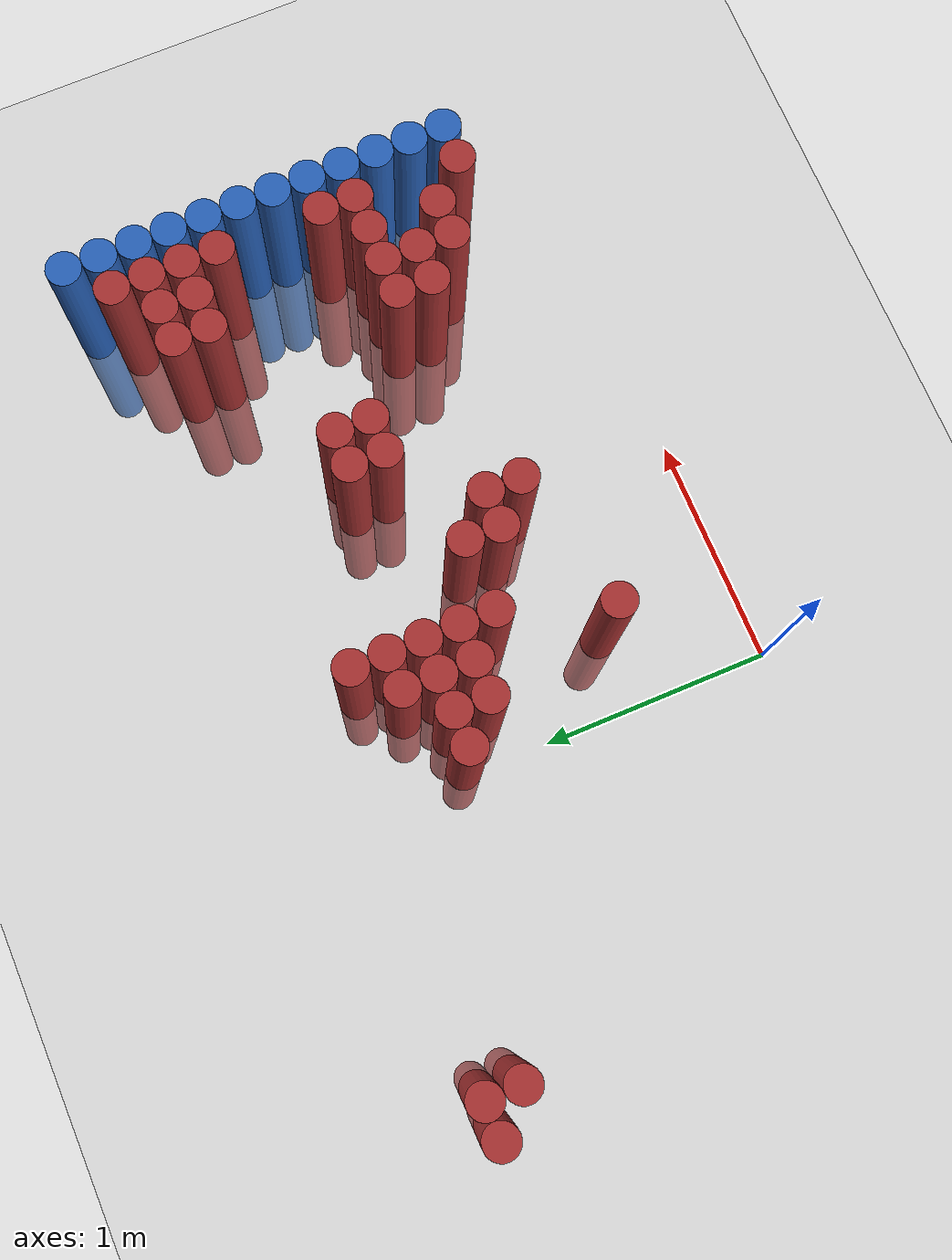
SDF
<sdf version="1.6">
 <world name="default">
  <model name="ground_plane">
   <static>1</static>
   <link name="link">
    <collision name="collision">
     <geometry><plane><normal>0 0 1</normal><size>100 100</size></plane></geometry>
     <surface><friction><ode><mu>100</mu><mu2>50</mu2></ode></friction></surface>
    </collision>
    <visual name="visual">
     <cast_shadows>0</cast_shadows>
     <geometry><plane><normal>0 0 1</normal><size>100 100</size></plane></geometry>
     <material>
      <script><uri>file://media/materials/scripts/gazebo.material</uri><name>Gazebo/Grey</name></script>
     </material>
    </visual>
   </link>
  </model>
  <model name="unit_cylinder_152">
   <static>1</static>
   <pose>-1.325000 1.825000 0.000000 0.000000 0.000000 0.000000</pose>
   <link name="link">
    <inertial>
     <mass>1</mass>
     <inertia><ixx>0.145833</ixx><ixy>0</ixy><ixz>0</ixz><iyy>0.145833</iyy><iyz>0</iyz><izz>0.125</izz></inertia>
    </inertial>
    <collision name="collision">
     <geometry><cylinder><radius>0.075000</radius><length>1.5</length></cylinder></geometry>
    </collision>
    <visual name="visual">
     <geometry><cylinder><radius>0.075000</radius><length>1.5</length></cylinder></geometry>
     <material>
      <ambient>0.648000 0.192000 0.192000 1</ambient>
      <diffuse>0.648000 0.192000 0.192000 1</diffuse>
     </material>
     <material>
      <script><name>Gazebo/Grey</name><uri>file://media/materials/scripts/gazebo.material</uri></script>
     </material>
    </visual>
   </link>
  </model>
  <model name="unit_cylinder_154">
   <static>1</static>
   <pose>-1.175000 1.675000 0.000000 0.000000 0.000000 0.000000</pose>
   <link name="link">
    <inertial>
     <mass>1</mass>
     <inertia><ixx>0.145833</ixx><ixy>0</ixy><ixz>0</ixz><iyy>0.145833</iyy><iyz>0</iyz><izz>0.125</izz></inertia>
    </inertial>
    <collision name="collision">
     <geometry><cylinder><radius>0.075000</radius><length>1.5</length></cylinder></geometry>
    </collision>
    <visual name="visual">
     <geometry><cylinder><radius>0.075000</radius><length>1.5</length></cylinder></geometry>
     <material>
      <ambient>0.648000 0.192000 0.192000 1</ambient>
      <diffuse>0.648000 0.192000 0.192000 1</diffuse>
     </material>
     <material>
      <script><name>Gazebo/Grey</name><uri>file://media/materials/scripts/gazebo.material</uri></script>
     </material>
    </visual>
   </link>
  </model>
  <model name="unit_cylinder_155">
   <static>1</static>
   <pose>-1.175000 1.825000 0.000000 0.000000 0.000000 0.000000</pose>
   <link name="link">
    <inertial>
     <mass>1</mass>
     <inertia><ixx>0.145833</ixx><ixy>0</ixy><ixz>0</ixz><iyy>0.145833</iyy><iyz>0</iyz><izz>0.125</izz></inertia>
    </inertial>
    <collision name="collision">
     <geometry><cylinder><radius>0.075000</radius><length>1.5</length></cylinder></geometry>
    </collision>
    <visual name="visual">
     <geometry><cylinder><radius>0.075000</radius><length>1.5</length></cylinder></geometry>
     <material>
      <ambient>0.648000 0.192000 0.192000 1</ambient>
      <diffuse>0.648000 0.192000 0.192000 1</diffuse>
     </material>
     <material>
      <script><name>Gazebo/Grey</name><uri>file://media/materials/scripts/gazebo.material</uri></script>
     </material>
    </visual>
   </link>
  </model>
  <model name="unit_cylinder_156">
   <static>1</static>
   <pose>0.025000 1.375000 0.000000 0.000000 0.000000 0.000000</pose>
   <link name="link">
    <inertial>
     <mass>1</mass>
     <inertia><ixx>0.145833</ixx><ixy>0</ixy><ixz>0</ixz><iyy>0.145833</iyy><iyz>0</iyz><izz>0.125</izz></inertia>
    </inertial>
    <collision name="collision">
     <geometry><cylinder><radius>0.075000</radius><length>1.5</length></cylinder></geometry>
    </collision>
    <visual name="visual">
     <geometry><cylinder><radius>0.075000</radius><length>1.5</length></cylinder></geometry>
     <material>
      <ambient>0.648000 0.192000 0.192000 1</ambient>
      <diffuse>0.648000 0.192000 0.192000 1</diffuse>
     </material>
     <material>
      <script><name>Gazebo/Grey</name><uri>file://media/materials/scripts/gazebo.material</uri></script>
     </material>
    </visual>
   </link>
  </model>
  <model name="unit_cylinder_159">
   <static>1</static>
   <pose>0.175000 1.225000 0.000000 0.000000 0.000000 0.000000</pose>
   <link name="link">
    <inertial>
     <mass>1</mass>
     <inertia><ixx>0.145833</ixx><ixy>0</ixy><ixz>0</ixz><iyy>0.145833</iyy><iyz>0</iyz><izz>0.125</izz></inertia>
    </inertial>
    <collision name="collision">
     <geometry><cylinder><radius>0.075000</radius><length>1.5</length></cylinder></geometry>
    </collision>
    <visual name="visual">
     <geometry><cylinder><radius>0.075000</radius><length>1.5</length></cylinder></geometry>
     <material>
      <ambient>0.648000 0.192000 0.192000 1</ambient>
      <diffuse>0.648000 0.192000 0.192000 1</diffuse>
     </material>
     <material>
      <script><name>Gazebo/Grey</name><uri>file://media/materials/scripts/gazebo.material</uri></script>
     </material>
    </visual>
   </link>
  </model>
  <model name="unit_cylinder_160">
   <static>1</static>
   <pose>0.175000 1.375000 0.000000 0.000000 0.000000 0.000000</pose>
   <link name="link">
    <inertial>
     <mass>1</mass>
     <inertia><ixx>0.145833</ixx><ixy>0</ixy><ixz>0</ixz><iyy>0.145833</iyy><iyz>0</iyz><izz>0.125</izz></inertia>
    </inertial>
    <collision name="collision">
     <geometry><cylinder><radius>0.075000</radius><length>1.5</length></cylinder></geometry>
    </collision>
    <visual name="visual">
     <geometry><cylinder><radius>0.075000</radius><length>1.5</length></cylinder></geometry>
     <material>
      <ambient>0.648000 0.192000 0.192000 1</ambient>
      <diffuse>0.648000 0.192000 0.192000 1</diffuse>
     </material>
     <material>
      <script><name>Gazebo/Grey</name><uri>file://media/materials/scripts/gazebo.material</uri></script>
     </material>
    </visual>
   </link>
  </model>
  <model name="unit_cylinder_163">
   <static>1</static>
   <pose>0.325000 0.625000 0.000000 0.000000 0.000000 0.000000</pose>
   <link name="link">
    <inertial>
     <mass>1</mass>
     <inertia><ixx>0.145833</ixx><ixy>0</ixy><ixz>0</ixz><iyy>0.145833</iyy><iyz>0</iyz><izz>0.125</izz></inertia>
    </inertial>
    <collision name="collision">
     <geometry><cylinder><radius>0.075000</radius><length>1.5</length></cylinder></geometry>
    </collision>
    <visual name="visual">
     <geometry><cylinder><radius>0.075000</radius><length>1.5</length></cylinder></geometry>
     <material>
      <ambient>0.648000 0.192000 0.192000 1</ambient>
      <diffuse>0.648000 0.192000 0.192000 1</diffuse>
     </material>
     <material>
      <script><name>Gazebo/Grey</name><uri>file://media/materials/scripts/gazebo.material</uri></script>
     </material>
    </visual>
   </link>
  </model>
  <model name="unit_cylinder_164">
   <static>1</static>
   <pose>0.325000 1.225000 0.000000 0.000000 0.000000 0.000000</pose>
   <link name="link">
    <inertial>
     <mass>1</mass>
     <inertia><ixx>0.145833</ixx><ixy>0</ixy><ixz>0</ixz><iyy>0.145833</iyy><iyz>0</iyz><izz>0.125</izz></inertia>
    </inertial>
    <collision name="collision">
     <geometry><cylinder><radius>0.075000</radius><length>1.5</length></cylinder></geometry>
    </collision>
    <visual name="visual">
     <geometry><cylinder><radius>0.075000</radius><length>1.5</length></cylinder></geometry>
     <material>
      <ambient>0.648000 0.192000 0.192000 1</ambient>
      <diffuse>0.648000 0.192000 0.192000 1</diffuse>
     </material>
     <material>
      <script><name>Gazebo/Grey</name><uri>file://media/materials/scripts/gazebo.material</uri></script>
     </material>
    </visual>
   </link>
  </model>
  <model name="unit_cylinder_165">
   <static>1</static>
   <pose>0.325000 1.375000 0.000000 0.000000 0.000000 0.000000</pose>
   <link name="link">
    <inertial>
     <mass>1</mass>
     <inertia><ixx>0.145833</ixx><ixy>0</ixy><ixz>0</ixz><iyy>0.145833</iyy><iyz>0</iyz><izz>0.125</izz></inertia>
    </inertial>
    <collision name="collision">
     <geometry><cylinder><radius>0.075000</radius><length>1.5</length></cylinder></geometry>
    </collision>
    <visual name="visual">
     <geometry><cylinder><radius>0.075000</radius><length>1.5</length></cylinder></geometry>
     <material>
      <ambient>0.648000 0.192000 0.192000 1</ambient>
      <diffuse>0.648000 0.192000 0.192000 1</diffuse>
     </material>
     <material>
      <script><name>Gazebo/Grey</name><uri>file://media/materials/scripts/gazebo.material</uri></script>
     </material>
    </visual>
   </link>
  </model>
  <model name="unit_cylinder_166">
   <static>1</static>
   <pose>0.325000 1.525000 0.000000 0.000000 0.000000 0.000000</pose>
   <link name="link">
    <inertial>
     <mass>1</mass>
     <inertia><ixx>0.145833</ixx><ixy>0</ixy><ixz>0</ixz><iyy>0.145833</iyy><iyz>0</iyz><izz>0.125</izz></inertia>
    </inertial>
    <collision name="collision">
     <geometry><cylinder><radius>0.075000</radius><length>1.5</length></cylinder></geometry>
    </collision>
    <visual name="visual">
     <geometry><cylinder><radius>0.075000</radius><length>1.5</length></cylinder></geometry>
     <material>
      <ambient>0.648000 0.192000 0.192000 1</ambient>
      <diffuse>0.648000 0.192000 0.192000 1</diffuse>
     </material>
     <material>
      <script><name>Gazebo/Grey</name><uri>file://media/materials/scripts/gazebo.material</uri></script>
     </material>
    </visual>
   </link>
  </model>
  <model name="unit_cylinder_170">
   <static>1</static>
   <pose>0.475000 1.075000 0.000000 0.000000 0.000000 0.000000</pose>
   <link name="link">
    <inertial>
     <mass>1</mass>
     <inertia><ixx>0.145833</ixx><ixy>0</ixy><ixz>0</ixz><iyy>0.145833</iyy><iyz>0</iyz><izz>0.125</izz></inertia>
    </inertial>
    <collision name="collision">
     <geometry><cylinder><radius>0.075000</radius><length>1.5</length></cylinder></geometry>
    </collision>
    <visual name="visual">
     <geometry><cylinder><radius>0.075000</radius><length>1.5</length></cylinder></geometry>
     <material>
      <ambient>0.648000 0.192000 0.192000 1</ambient>
      <diffuse>0.648000 0.192000 0.192000 1</diffuse>
     </material>
     <material>
      <script><name>Gazebo/Grey</name><uri>file://media/materials/scripts/gazebo.material</uri></script>
     </material>
    </visual>
   </link>
  </model>
  <model name="unit_cylinder_171">
   <static>1</static>
   <pose>0.475000 1.225000 0.000000 0.000000 0.000000 0.000000</pose>
   <link name="link">
    <inertial>
     <mass>1</mass>
     <inertia><ixx>0.145833</ixx><ixy>0</ixy><ixz>0</ixz><iyy>0.145833</iyy><iyz>0</iyz><izz>0.125</izz></inertia>
    </inertial>
    <collision name="collision">
     <geometry><cylinder><radius>0.075000</radius><length>1.5</length></cylinder></geometry>
    </collision>
    <visual name="visual">
     <geometry><cylinder><radius>0.075000</radius><length>1.5</length></cylinder></geometry>
     <material>
      <ambient>0.648000 0.192000 0.192000 1</ambient>
      <diffuse>0.648000 0.192000 0.192000 1</diffuse>
     </material>
     <material>
      <script><name>Gazebo/Grey</name><uri>file://media/materials/scripts/gazebo.material</uri></script>
     </material>
    </visual>
   </link>
  </model>
  <model name="unit_cylinder_172">
   <static>1</static>
   <pose>0.475000 1.375000 0.000000 0.000000 0.000000 0.000000</pose>
   <link name="link">
    <inertial>
     <mass>1</mass>
     <inertia><ixx>0.145833</ixx><ixy>0</ixy><ixz>0</ixz><iyy>0.145833</iyy><iyz>0</iyz><izz>0.125</izz></inertia>
    </inertial>
    <collision name="collision">
     <geometry><cylinder><radius>0.075000</radius><length>1.5</length></cylinder></geometry>
    </collision>
    <visual name="visual">
     <geometry><cylinder><radius>0.075000</radius><length>1.5</length></cylinder></geometry>
     <material>
      <ambient>0.648000 0.192000 0.192000 1</ambient>
      <diffuse>0.648000 0.192000 0.192000 1</diffuse>
     </material>
     <material>
      <script><name>Gazebo/Grey</name><uri>file://media/materials/scripts/gazebo.material</uri></script>
     </material>
    </visual>
   </link>
  </model>
  <model name="unit_cylinder_173">
   <static>1</static>
   <pose>0.475000 1.525000 0.000000 0.000000 0.000000 0.000000</pose>
   <link name="link">
    <inertial>
     <mass>1</mass>
     <inertia><ixx>0.145833</ixx><ixy>0</ixy><ixz>0</ixz><iyy>0.145833</iyy><iyz>0</iyz><izz>0.125</izz></inertia>
    </inertial>
    <collision name="collision">
     <geometry><cylinder><radius>0.075000</radius><length>1.5</length></cylinder></geometry>
    </collision>
    <visual name="visual">
     <geometry><cylinder><radius>0.075000</radius><length>1.5</length></cylinder></geometry>
     <material>
      <ambient>0.648000 0.192000 0.192000 1</ambient>
      <diffuse>0.648000 0.192000 0.192000 1</diffuse>
     </material>
     <material>
      <script><name>Gazebo/Grey</name><uri>file://media/materials/scripts/gazebo.material</uri></script>
     </material>
    </visual>
   </link>
  </model>
  <model name="unit_cylinder_174">
   <static>1</static>
   <pose>0.475000 1.675000 0.000000 0.000000 0.000000 0.000000</pose>
   <link name="link">
    <inertial>
     <mass>1</mass>
     <inertia><ixx>0.145833</ixx><ixy>0</ixy><ixz>0</ixz><iyy>0.145833</iyy><iyz>0</iyz><izz>0.125</izz></inertia>
    </inertial>
    <collision name="collision">
     <geometry><cylinder><radius>0.075000</radius><length>1.5</length></cylinder></geometry>
    </collision>
    <visual name="visual">
     <geometry><cylinder><radius>0.075000</radius><length>1.5</length></cylinder></geometry>
     <material>
      <ambient>0.648000 0.192000 0.192000 1</ambient>
      <diffuse>0.648000 0.192000 0.192000 1</diffuse>
     </material>
     <material>
      <script><name>Gazebo/Grey</name><uri>file://media/materials/scripts/gazebo.material</uri></script>
     </material>
    </visual>
   </link>
  </model>
  <model name="unit_cylinder_182">
   <static>1</static>
   <pose>0.775000 0.925000 0.000000 0.000000 0.000000 0.000000</pose>
   <link name="link">
    <inertial>
     <mass>1</mass>
     <inertia><ixx>0.145833</ixx><ixy>0</ixy><ixz>0</ixz><iyy>0.145833</iyy><iyz>0</iyz><izz>0.125</izz></inertia>
    </inertial>
    <collision name="collision">
     <geometry><cylinder><radius>0.075000</radius><length>1.5</length></cylinder></geometry>
    </collision>
    <visual name="visual">
     <geometry><cylinder><radius>0.075000</radius><length>1.5</length></cylinder></geometry>
     <material>
      <ambient>0.648000 0.192000 0.192000 1</ambient>
      <diffuse>0.648000 0.192000 0.192000 1</diffuse>
     </material>
     <material>
      <script><name>Gazebo/Grey</name><uri>file://media/materials/scripts/gazebo.material</uri></script>
     </material>
    </visual>
   </link>
  </model>
  <model name="unit_cylinder_183">
   <static>1</static>
   <pose>0.775000 1.075000 0.000000 0.000000 0.000000 0.000000</pose>
   <link name="link">
    <inertial>
     <mass>1</mass>
     <inertia><ixx>0.145833</ixx><ixy>0</ixy><ixz>0</ixz><iyy>0.145833</iyy><iyz>0</iyz><izz>0.125</izz></inertia>
    </inertial>
    <collision name="collision">
     <geometry><cylinder><radius>0.075000</radius><length>1.5</length></cylinder></geometry>
    </collision>
    <visual name="visual">
     <geometry><cylinder><radius>0.075000</radius><length>1.5</length></cylinder></geometry>
     <material>
      <ambient>0.648000 0.192000 0.192000 1</ambient>
      <diffuse>0.648000 0.192000 0.192000 1</diffuse>
     </material>
     <material>
      <script><name>Gazebo/Grey</name><uri>file://media/materials/scripts/gazebo.material</uri></script>
     </material>
    </visual>
   </link>
  </model>
  <model name="unit_cylinder_189">
   <static>1</static>
   <pose>0.925000 0.775000 0.000000 0.000000 0.000000 0.000000</pose>
   <link name="link">
    <inertial>
     <mass>1</mass>
     <inertia><ixx>0.145833</ixx><ixy>0</ixy><ixz>0</ixz><iyy>0.145833</iyy><iyz>0</iyz><izz>0.125</izz></inertia>
    </inertial>
    <collision name="collision">
     <geometry><cylinder><radius>0.075000</radius><length>1.5</length></cylinder></geometry>
    </collision>
    <visual name="visual">
     <geometry><cylinder><radius>0.075000</radius><length>1.5</length></cylinder></geometry>
     <material>
      <ambient>0.648000 0.192000 0.192000 1</ambient>
      <diffuse>0.648000 0.192000 0.192000 1</diffuse>
     </material>
     <material>
      <script><name>Gazebo/Grey</name><uri>file://media/materials/scripts/gazebo.material</uri></script>
     </material>
    </visual>
   </link>
  </model>
  <model name="unit_cylinder_190">
   <static>1</static>
   <pose>0.925000 0.925000 0.000000 0.000000 0.000000 0.000000</pose>
   <link name="link">
    <inertial>
     <mass>1</mass>
     <inertia><ixx>0.145833</ixx><ixy>0</ixy><ixz>0</ixz><iyy>0.145833</iyy><iyz>0</iyz><izz>0.125</izz></inertia>
    </inertial>
    <collision name="collision">
     <geometry><cylinder><radius>0.075000</radius><length>1.5</length></cylinder></geometry>
    </collision>
    <visual name="visual">
     <geometry><cylinder><radius>0.075000</radius><length>1.5</length></cylinder></geometry>
     <material>
      <ambient>0.648000 0.192000 0.192000 1</ambient>
      <diffuse>0.648000 0.192000 0.192000 1</diffuse>
     </material>
     <material>
      <script><name>Gazebo/Grey</name><uri>file://media/materials/scripts/gazebo.material</uri></script>
     </material>
    </visual>
   </link>
  </model>
  <model name="unit_cylinder_197">
   <static>1</static>
   <pose>1.225000 1.225000 0.000000 0.000000 0.000000 0.000000</pose>
   <link name="link">
    <inertial>
     <mass>1</mass>
     <inertia><ixx>0.145833</ixx><ixy>0</ixy><ixz>0</ixz><iyy>0.145833</iyy><iyz>0</iyz><izz>0.125</izz></inertia>
    </inertial>
    <collision name="collision">
     <geometry><cylinder><radius>0.075000</radius><length>1.5</length></cylinder></geometry>
    </collision>
    <visual name="visual">
     <geometry><cylinder><radius>0.075000</radius><length>1.5</length></cylinder></geometry>
     <material>
      <ambient>0.648000 0.192000 0.192000 1</ambient>
      <diffuse>0.648000 0.192000 0.192000 1</diffuse>
     </material>
     <material>
      <script><name>Gazebo/Grey</name><uri>file://media/materials/scripts/gazebo.material</uri></script>
     </material>
    </visual>
   </link>
  </model>
  <model name="unit_cylinder_198">
   <static>1</static>
   <pose>1.225000 1.375000 0.000000 0.000000 0.000000 0.000000</pose>
   <link name="link">
    <inertial>
     <mass>1</mass>
     <inertia><ixx>0.145833</ixx><ixy>0</ixy><ixz>0</ixz><iyy>0.145833</iyy><iyz>0</iyz><izz>0.125</izz></inertia>
    </inertial>
    <collision name="collision">
     <geometry><cylinder><radius>0.075000</radius><length>1.5</length></cylinder></geometry>
    </collision>
    <visual name="visual">
     <geometry><cylinder><radius>0.075000</radius><length>1.5</length></cylinder></geometry>
     <material>
      <ambient>0.648000 0.192000 0.192000 1</ambient>
      <diffuse>0.648000 0.192000 0.192000 1</diffuse>
     </material>
     <material>
      <script><name>Gazebo/Grey</name><uri>file://media/materials/scripts/gazebo.material</uri></script>
     </material>
    </visual>
   </link>
  </model>
  <model name="unit_cylinder_199">
   <static>1</static>
   <pose>1.375000 1.225000 0.000000 0.000000 0.000000 0.000000</pose>
   <link name="link">
    <inertial>
     <mass>1</mass>
     <inertia><ixx>0.145833</ixx><ixy>0</ixy><ixz>0</ixz><iyy>0.145833</iyy><iyz>0</iyz><izz>0.125</izz></inertia>
    </inertial>
    <collision name="collision">
     <geometry><cylinder><radius>0.075000</radius><length>1.5</length></cylinder></geometry>
    </collision>
    <visual name="visual">
     <geometry><cylinder><radius>0.075000</radius><length>1.5</length></cylinder></geometry>
     <material>
      <ambient>0.648000 0.192000 0.192000 1</ambient>
      <diffuse>0.648000 0.192000 0.192000 1</diffuse>
     </material>
     <material>
      <script><name>Gazebo/Grey</name><uri>file://media/materials/scripts/gazebo.material</uri></script>
     </material>
    </visual>
   </link>
  </model>
  <model name="unit_cylinder_200">
   <static>1</static>
   <pose>1.375000 1.375000 0.000000 0.000000 0.000000 0.000000</pose>
   <link name="link">
    <inertial>
     <mass>1</mass>
     <inertia><ixx>0.145833</ixx><ixy>0</ixy><ixz>0</ixz><iyy>0.145833</iyy><iyz>0</iyz><izz>0.125</izz></inertia>
    </inertial>
    <collision name="collision">
     <geometry><cylinder><radius>0.075000</radius><length>1.5</length></cylinder></geometry>
    </collision>
    <visual name="visual">
     <geometry><cylinder><radius>0.075000</radius><length>1.5</length></cylinder></geometry>
     <material>
      <ambient>0.648000 0.192000 0.192000 1</ambient>
      <diffuse>0.648000 0.192000 0.192000 1</diffuse>
     </material>
     <material>
      <script><name>Gazebo/Grey</name><uri>file://media/materials/scripts/gazebo.material</uri></script>
     </material>
    </visual>
   </link>
  </model>
  <model name="unit_cylinder_206">
   <static>1</static>
   <pose>1.825000 0.775000 0.000000 0.000000 0.000000 0.000000</pose>
   <link name="link">
    <inertial>
     <mass>1</mass>
     <inertia><ixx>0.145833</ixx><ixy>0</ixy><ixz>0</ixz><iyy>0.145833</iyy><iyz>0</iyz><izz>0.125</izz></inertia>
    </inertial>
    <collision name="collision">
     <geometry><cylinder><radius>0.075000</radius><length>1.5</length></cylinder></geometry>
    </collision>
    <visual name="visual">
     <geometry><cylinder><radius>0.075000</radius><length>1.5</length></cylinder></geometry>
     <material>
      <ambient>0.648000 0.192000 0.192000 1</ambient>
      <diffuse>0.648000 0.192000 0.192000 1</diffuse>
     </material>
     <material>
      <script><name>Gazebo/Grey</name><uri>file://media/materials/scripts/gazebo.material</uri></script>
     </material>
    </visual>
   </link>
  </model>
  <model name="unit_cylinder_207">
   <static>1</static>
   <pose>1.825000 0.925000 0.000000 0.000000 0.000000 0.000000</pose>
   <link name="link">
    <inertial>
     <mass>1</mass>
     <inertia><ixx>0.145833</ixx><ixy>0</ixy><ixz>0</ixz><iyy>0.145833</iyy><iyz>0</iyz><izz>0.125</izz></inertia>
    </inertial>
    <collision name="collision">
     <geometry><cylinder><radius>0.075000</radius><length>1.5</length></cylinder></geometry>
    </collision>
    <visual name="visual">
     <geometry><cylinder><radius>0.075000</radius><length>1.5</length></cylinder></geometry>
     <material>
      <ambient>0.648000 0.192000 0.192000 1</ambient>
      <diffuse>0.648000 0.192000 0.192000 1</diffuse>
     </material>
     <material>
      <script><name>Gazebo/Grey</name><uri>file://media/materials/scripts/gazebo.material</uri></script>
     </material>
    </visual>
   </link>
  </model>
  <model name="unit_cylinder_212">
   <static>1</static>
   <pose>1.975000 0.625000 0.000000 0.000000 0.000000 0.000000</pose>
   <link name="link">
    <inertial>
     <mass>1</mass>
     <inertia><ixx>0.145833</ixx><ixy>0</ixy><ixz>0</ixz><iyy>0.145833</iyy><iyz>0</iyz><izz>0.125</izz></inertia>
    </inertial>
    <collision name="collision">
     <geometry><cylinder><radius>0.075000</radius><length>1.5</length></cylinder></geometry>
    </collision>
    <visual name="visual">
     <geometry><cylinder><radius>0.075000</radius><length>1.5</length></cylinder></geometry>
     <material>
      <ambient>0.648000 0.192000 0.192000 1</ambient>
      <diffuse>0.648000 0.192000 0.192000 1</diffuse>
     </material>
     <material>
      <script><name>Gazebo/Grey</name><uri>file://media/materials/scripts/gazebo.material</uri></script>
     </material>
    </visual>
   </link>
  </model>
  <model name="unit_cylinder_213">
   <static>1</static>
   <pose>1.975000 0.775000 0.000000 0.000000 0.000000 0.000000</pose>
   <link name="link">
    <inertial>
     <mass>1</mass>
     <inertia><ixx>0.145833</ixx><ixy>0</ixy><ixz>0</ixz><iyy>0.145833</iyy><iyz>0</iyz><izz>0.125</izz></inertia>
    </inertial>
    <collision name="collision">
     <geometry><cylinder><radius>0.075000</radius><length>1.5</length></cylinder></geometry>
    </collision>
    <visual name="visual">
     <geometry><cylinder><radius>0.075000</radius><length>1.5</length></cylinder></geometry>
     <material>
      <ambient>0.648000 0.192000 0.192000 1</ambient>
      <diffuse>0.648000 0.192000 0.192000 1</diffuse>
     </material>
     <material>
      <script><name>Gazebo/Grey</name><uri>file://media/materials/scripts/gazebo.material</uri></script>
     </material>
    </visual>
   </link>
  </model>
  <model name="unit_cylinder_214">
   <static>1</static>
   <pose>1.975000 0.925000 0.000000 0.000000 0.000000 0.000000</pose>
   <link name="link">
    <inertial>
     <mass>1</mass>
     <inertia><ixx>0.145833</ixx><ixy>0</ixy><ixz>0</ixz><iyy>0.145833</iyy><iyz>0</iyz><izz>0.125</izz></inertia>
    </inertial>
    <collision name="collision">
     <geometry><cylinder><radius>0.075000</radius><length>1.5</length></cylinder></geometry>
    </collision>
    <visual name="visual">
     <geometry><cylinder><radius>0.075000</radius><length>1.5</length></cylinder></geometry>
     <material>
      <ambient>0.648000 0.192000 0.192000 1</ambient>
      <diffuse>0.648000 0.192000 0.192000 1</diffuse>
     </material>
     <material>
      <script><name>Gazebo/Grey</name><uri>file://media/materials/scripts/gazebo.material</uri></script>
     </material>
    </visual>
   </link>
  </model>
  <model name="unit_cylinder_215">
   <static>1</static>
   <pose>1.975000 1.675000 0.000000 0.000000 0.000000 0.000000</pose>
   <link name="link">
    <inertial>
     <mass>1</mass>
     <inertia><ixx>0.145833</ixx><ixy>0</ixy><ixz>0</ixz><iyy>0.145833</iyy><iyz>0</iyz><izz>0.125</izz></inertia>
    </inertial>
    <collision name="collision">
     <geometry><cylinder><radius>0.075000</radius><length>1.5</length></cylinder></geometry>
    </collision>
    <visual name="visual">
     <geometry><cylinder><radius>0.075000</radius><length>1.5</length></cylinder></geometry>
     <material>
      <ambient>0.648000 0.192000 0.192000 1</ambient>
      <diffuse>0.648000 0.192000 0.192000 1</diffuse>
     </material>
     <material>
      <script><name>Gazebo/Grey</name><uri>file://media/materials/scripts/gazebo.material</uri></script>
     </material>
    </visual>
   </link>
  </model>
  <model name="unit_cylinder_216">
   <static>1</static>
   <pose>1.975000 1.825000 0.000000 0.000000 0.000000 0.000000</pose>
   <link name="link">
    <inertial>
     <mass>1</mass>
     <inertia><ixx>0.145833</ixx><ixy>0</ixy><ixz>0</ixz><iyy>0.145833</iyy><iyz>0</iyz><izz>0.125</izz></inertia>
    </inertial>
    <collision name="collision">
     <geometry><cylinder><radius>0.075000</radius><length>1.5</length></cylinder></geometry>
    </collision>
    <visual name="visual">
     <geometry><cylinder><radius>0.075000</radius><length>1.5</length></cylinder></geometry>
     <material>
      <ambient>0.648000 0.192000 0.192000 1</ambient>
      <diffuse>0.648000 0.192000 0.192000 1</diffuse>
     </material>
     <material>
      <script><name>Gazebo/Grey</name><uri>file://media/materials/scripts/gazebo.material</uri></script>
     </material>
    </visual>
   </link>
  </model>
  <model name="unit_cylinder_223">
   <static>1</static>
   <pose>2.125000 0.625000 0.000000 0.000000 0.000000 0.000000</pose>
   <link name="link">
    <inertial>
     <mass>1</mass>
     <inertia><ixx>0.145833</ixx><ixy>0</ixy><ixz>0</ixz><iyy>0.145833</iyy><iyz>0</iyz><izz>0.125</izz></inertia>
    </inertial>
    <collision name="collision">
     <geometry><cylinder><radius>0.075000</radius><length>1.5</length></cylinder></geometry>
    </collision>
    <visual name="visual">
     <geometry><cylinder><radius>0.075000</radius><length>1.5</length></cylinder></geometry>
     <material>
      <ambient>0.648000 0.192000 0.192000 1</ambient>
      <diffuse>0.648000 0.192000 0.192000 1</diffuse>
     </material>
     <material>
      <script><name>Gazebo/Grey</name><uri>file://media/materials/scripts/gazebo.material</uri></script>
     </material>
    </visual>
   </link>
  </model>
  <model name="unit_cylinder_224">
   <static>1</static>
   <pose>2.125000 0.925000 0.000000 0.000000 0.000000 0.000000</pose>
   <link name="link">
    <inertial>
     <mass>1</mass>
     <inertia><ixx>0.145833</ixx><ixy>0</ixy><ixz>0</ixz><iyy>0.145833</iyy><iyz>0</iyz><izz>0.125</izz></inertia>
    </inertial>
    <collision name="collision">
     <geometry><cylinder><radius>0.075000</radius><length>1.5</length></cylinder></geometry>
    </collision>
    <visual name="visual">
     <geometry><cylinder><radius>0.075000</radius><length>1.5</length></cylinder></geometry>
     <material>
      <ambient>0.648000 0.192000 0.192000 1</ambient>
      <diffuse>0.648000 0.192000 0.192000 1</diffuse>
     </material>
     <material>
      <script><name>Gazebo/Grey</name><uri>file://media/materials/scripts/gazebo.material</uri></script>
     </material>
    </visual>
   </link>
  </model>
  <model name="unit_cylinder_225">
   <static>1</static>
   <pose>2.125000 1.675000 0.000000 0.000000 0.000000 0.000000</pose>
   <link name="link">
    <inertial>
     <mass>1</mass>
     <inertia><ixx>0.145833</ixx><ixy>0</ixy><ixz>0</ixz><iyy>0.145833</iyy><iyz>0</iyz><izz>0.125</izz></inertia>
    </inertial>
    <collision name="collision">
     <geometry><cylinder><radius>0.075000</radius><length>1.5</length></cylinder></geometry>
    </collision>
    <visual name="visual">
     <geometry><cylinder><radius>0.075000</radius><length>1.5</length></cylinder></geometry>
     <material>
      <ambient>0.648000 0.192000 0.192000 1</ambient>
      <diffuse>0.648000 0.192000 0.192000 1</diffuse>
     </material>
     <material>
      <script><name>Gazebo/Grey</name><uri>file://media/materials/scripts/gazebo.material</uri></script>
     </material>
    </visual>
   </link>
  </model>
  <model name="unit_cylinder_226">
   <static>1</static>
   <pose>2.125000 1.825000 0.000000 0.000000 0.000000 0.000000</pose>
   <link name="link">
    <inertial>
     <mass>1</mass>
     <inertia><ixx>0.145833</ixx><ixy>0</ixy><ixz>0</ixz><iyy>0.145833</iyy><iyz>0</iyz><izz>0.125</izz></inertia>
    </inertial>
    <collision name="collision">
     <geometry><cylinder><radius>0.075000</radius><length>1.5</length></cylinder></geometry>
    </collision>
    <visual name="visual">
     <geometry><cylinder><radius>0.075000</radius><length>1.5</length></cylinder></geometry>
     <material>
      <ambient>0.648000 0.192000 0.192000 1</ambient>
      <diffuse>0.648000 0.192000 0.192000 1</diffuse>
     </material>
     <material>
      <script><name>Gazebo/Grey</name><uri>file://media/materials/scripts/gazebo.material</uri></script>
     </material>
    </visual>
   </link>
  </model>
  <model name="unit_cylinder_228">
   <static>1</static>
   <pose>2.275000 0.475000 0.000000 0.000000 0.000000 0.000000</pose>
   <link name="link">
    <inertial>
     <mass>1</mass>
     <inertia><ixx>0.145833</ixx><ixy>0</ixy><ixz>0</ixz><iyy>0.145833</iyy><iyz>0</iyz><izz>0.125</izz></inertia>
    </inertial>
    <collision name="collision">
     <geometry><cylinder><radius>0.075000</radius><length>1.5</length></cylinder></geometry>
    </collision>
    <visual name="visual">
     <geometry><cylinder><radius>0.075000</radius><length>1.5</length></cylinder></geometry>
     <material>
      <ambient>0.648000 0.192000 0.192000 1</ambient>
      <diffuse>0.648000 0.192000 0.192000 1</diffuse>
     </material>
     <material>
      <script><name>Gazebo/Grey</name><uri>file://media/materials/scripts/gazebo.material</uri></script>
     </material>
    </visual>
   </link>
  </model>
  <model name="unit_cylinder_229">
   <static>1</static>
   <pose>2.275000 0.925000 0.000000 0.000000 0.000000 0.000000</pose>
   <link name="link">
    <inertial>
     <mass>1</mass>
     <inertia><ixx>0.145833</ixx><ixy>0</ixy><ixz>0</ixz><iyy>0.145833</iyy><iyz>0</iyz><izz>0.125</izz></inertia>
    </inertial>
    <collision name="collision">
     <geometry><cylinder><radius>0.075000</radius><length>1.5</length></cylinder></geometry>
    </collision>
    <visual name="visual">
     <geometry><cylinder><radius>0.075000</radius><length>1.5</length></cylinder></geometry>
     <material>
      <ambient>0.648000 0.192000 0.192000 1</ambient>
      <diffuse>0.648000 0.192000 0.192000 1</diffuse>
     </material>
     <material>
      <script><name>Gazebo/Grey</name><uri>file://media/materials/scripts/gazebo.material</uri></script>
     </material>
    </visual>
   </link>
  </model>
  <model name="unit_cylinder_230">
   <static>1</static>
   <pose>2.275000 1.075000 0.000000 0.000000 0.000000 0.000000</pose>
   <link name="link">
    <inertial>
     <mass>1</mass>
     <inertia><ixx>0.145833</ixx><ixy>0</ixy><ixz>0</ixz><iyy>0.145833</iyy><iyz>0</iyz><izz>0.125</izz></inertia>
    </inertial>
    <collision name="collision">
     <geometry><cylinder><radius>0.075000</radius><length>1.5</length></cylinder></geometry>
    </collision>
    <visual name="visual">
     <geometry><cylinder><radius>0.075000</radius><length>1.5</length></cylinder></geometry>
     <material>
      <ambient>0.648000 0.192000 0.192000 1</ambient>
      <diffuse>0.648000 0.192000 0.192000 1</diffuse>
     </material>
     <material>
      <script><name>Gazebo/Grey</name><uri>file://media/materials/scripts/gazebo.material</uri></script>
     </material>
    </visual>
   </link>
  </model>
  <model name="unit_cylinder_231">
   <static>1</static>
   <pose>2.275000 1.525000 0.000000 0.000000 0.000000 0.000000</pose>
   <link name="link">
    <inertial>
     <mass>1</mass>
     <inertia><ixx>0.145833</ixx><ixy>0</ixy><ixz>0</ixz><iyy>0.145833</iyy><iyz>0</iyz><izz>0.125</izz></inertia>
    </inertial>
    <collision name="collision">
     <geometry><cylinder><radius>0.075000</radius><length>1.5</length></cylinder></geometry>
    </collision>
    <visual name="visual">
     <geometry><cylinder><radius>0.075000</radius><length>1.5</length></cylinder></geometry>
     <material>
      <ambient>0.648000 0.192000 0.192000 1</ambient>
      <diffuse>0.648000 0.192000 0.192000 1</diffuse>
     </material>
     <material>
      <script><name>Gazebo/Grey</name><uri>file://media/materials/scripts/gazebo.material</uri></script>
     </material>
    </visual>
   </link>
  </model>
  <model name="unit_cylinder_232">
   <static>1</static>
   <pose>2.275000 1.675000 0.000000 0.000000 0.000000 0.000000</pose>
   <link name="link">
    <inertial>
     <mass>1</mass>
     <inertia><ixx>0.145833</ixx><ixy>0</ixy><ixz>0</ixz><iyy>0.145833</iyy><iyz>0</iyz><izz>0.125</izz></inertia>
    </inertial>
    <collision name="collision">
     <geometry><cylinder><radius>0.075000</radius><length>1.5</length></cylinder></geometry>
    </collision>
    <visual name="visual">
     <geometry><cylinder><radius>0.075000</radius><length>1.5</length></cylinder></geometry>
     <material>
      <ambient>0.648000 0.192000 0.192000 1</ambient>
      <diffuse>0.648000 0.192000 0.192000 1</diffuse>
     </material>
     <material>
      <script><name>Gazebo/Grey</name><uri>file://media/materials/scripts/gazebo.material</uri></script>
     </material>
    </visual>
   </link>
  </model>
  <model name="unit_cylinder_233">
   <static>1</static>
   <pose>2.275000 1.825000 0.000000 0.000000 0.000000 0.000000</pose>
   <link name="link">
    <inertial>
     <mass>1</mass>
     <inertia><ixx>0.145833</ixx><ixy>0</ixy><ixz>0</ixz><iyy>0.145833</iyy><iyz>0</iyz><izz>0.125</izz></inertia>
    </inertial>
    <collision name="collision">
     <geometry><cylinder><radius>0.075000</radius><length>1.5</length></cylinder></geometry>
    </collision>
    <visual name="visual">
     <geometry><cylinder><radius>0.075000</radius><length>1.5</length></cylinder></geometry>
     <material>
      <ambient>0.648000 0.192000 0.192000 1</ambient>
      <diffuse>0.648000 0.192000 0.192000 1</diffuse>
     </material>
     <material>
      <script><name>Gazebo/Grey</name><uri>file://media/materials/scripts/gazebo.material</uri></script>
     </material>
    </visual>
   </link>
  </model>
  <model name="unit_cylinder_234">
   <static>1</static>
   <pose>2.275000 1.975000 0.000000 0.000000 0.000000 0.000000</pose>
   <link name="link">
    <inertial>
     <mass>1</mass>
     <inertia><ixx>0.145833</ixx><ixy>0</ixy><ixz>0</ixz><iyy>0.145833</iyy><iyz>0</iyz><izz>0.125</izz></inertia>
    </inertial>
    <collision name="collision">
     <geometry><cylinder><radius>0.075000</radius><length>1.5</length></cylinder></geometry>
    </collision>
    <visual name="visual">
     <geometry><cylinder><radius>0.075000</radius><length>1.5</length></cylinder></geometry>
     <material>
      <ambient>0.648000 0.192000 0.192000 1</ambient>
      <diffuse>0.648000 0.192000 0.192000 1</diffuse>
     </material>
     <material>
      <script><name>Gazebo/Grey</name><uri>file://media/materials/scripts/gazebo.material</uri></script>
     </material>
    </visual>
   </link>
  </model>
  <model name="unit_cylinder_239">
   <static>1</static>
   <pose>2.425000 0.475000 0.000000 0.000000 0.000000 0.000000</pose>
   <link name="link">
    <inertial>
     <mass>1</mass>
     <inertia><ixx>0.145833</ixx><ixy>0</ixy><ixz>0</ixz><iyy>0.145833</iyy><iyz>0</iyz><izz>0.125</izz></inertia>
    </inertial>
    <collision name="collision">
     <geometry><cylinder><radius>0.075000</radius><length>1.5</length></cylinder></geometry>
    </collision>
    <visual name="visual">
     <geometry><cylinder><radius>0.075000</radius><length>1.5</length></cylinder></geometry>
     <material>
      <ambient>0.152000 0.379000 0.720000 1</ambient>
      <diffuse>0.152000 0.379000 0.720000 1</diffuse>
     </material>
     <material>
      <script><name>Gazebo/Grey</name><uri>file://media/materials/scripts/gazebo.material</uri></script>
     </material>
    </visual>
   </link>
  </model>
  <model name="unit_cylinder_240">
   <static>1</static>
   <pose>2.425000 0.625000 0.000000 0.000000 0.000000 0.000000</pose>
   <link name="link">
    <inertial>
     <mass>1</mass>
     <inertia><ixx>0.145833</ixx><ixy>0</ixy><ixz>0</ixz><iyy>0.145833</iyy><iyz>0</iyz><izz>0.125</izz></inertia>
    </inertial>
    <collision name="collision">
     <geometry><cylinder><radius>0.075000</radius><length>1.5</length></cylinder></geometry>
    </collision>
    <visual name="visual">
     <geometry><cylinder><radius>0.075000</radius><length>1.5</length></cylinder></geometry>
     <material>
      <ambient>0.152000 0.379000 0.720000 1</ambient>
      <diffuse>0.152000 0.379000 0.720000 1</diffuse>
     </material>
     <material>
      <script><name>Gazebo/Grey</name><uri>file://media/materials/scripts/gazebo.material</uri></script>
     </material>
    </visual>
   </link>
  </model>
  <model name="unit_cylinder_241">
   <static>1</static>
   <pose>2.425000 0.775000 0.000000 0.000000 0.000000 0.000000</pose>
   <link name="link">
    <inertial>
     <mass>1</mass>
     <inertia><ixx>0.145833</ixx><ixy>0</ixy><ixz>0</ixz><iyy>0.145833</iyy><iyz>0</iyz><izz>0.125</izz></inertia>
    </inertial>
    <collision name="collision">
     <geometry><cylinder><radius>0.075000</radius><length>1.5</length></cylinder></geometry>
    </collision>
    <visual name="visual">
     <geometry><cylinder><radius>0.075000</radius><length>1.5</length></cylinder></geometry>
     <material>
      <ambient>0.152000 0.379000 0.720000 1</ambient>
      <diffuse>0.152000 0.379000 0.720000 1</diffuse>
     </material>
     <material>
      <script><name>Gazebo/Grey</name><uri>file://media/materials/scripts/gazebo.material</uri></script>
     </material>
    </visual>
   </link>
  </model>
  <model name="unit_cylinder_242">
   <static>1</static>
   <pose>2.425000 0.925000 0.000000 0.000000 0.000000 0.000000</pose>
   <link name="link">
    <inertial>
     <mass>1</mass>
     <inertia><ixx>0.145833</ixx><ixy>0</ixy><ixz>0</ixz><iyy>0.145833</iyy><iyz>0</iyz><izz>0.125</izz></inertia>
    </inertial>
    <collision name="collision">
     <geometry><cylinder><radius>0.075000</radius><length>1.5</length></cylinder></geometry>
    </collision>
    <visual name="visual">
     <geometry><cylinder><radius>0.075000</radius><length>1.5</length></cylinder></geometry>
     <material>
      <ambient>0.152000 0.379000 0.720000 1</ambient>
      <diffuse>0.152000 0.379000 0.720000 1</diffuse>
     </material>
     <material>
      <script><name>Gazebo/Grey</name><uri>file://media/materials/scripts/gazebo.material</uri></script>
     </material>
    </visual>
   </link>
  </model>
  <model name="unit_cylinder_243">
   <static>1</static>
   <pose>2.425000 1.075000 0.000000 0.000000 0.000000 0.000000</pose>
   <link name="link">
    <inertial>
     <mass>1</mass>
     <inertia><ixx>0.145833</ixx><ixy>0</ixy><ixz>0</ixz><iyy>0.145833</iyy><iyz>0</iyz><izz>0.125</izz></inertia>
    </inertial>
    <collision name="collision">
     <geometry><cylinder><radius>0.075000</radius><length>1.5</length></cylinder></geometry>
    </collision>
    <visual name="visual">
     <geometry><cylinder><radius>0.075000</radius><length>1.5</length></cylinder></geometry>
     <material>
      <ambient>0.152000 0.379000 0.720000 1</ambient>
      <diffuse>0.152000 0.379000 0.720000 1</diffuse>
     </material>
     <material>
      <script><name>Gazebo/Grey</name><uri>file://media/materials/scripts/gazebo.material</uri></script>
     </material>
    </visual>
   </link>
  </model>
  <model name="unit_cylinder_244">
   <static>1</static>
   <pose>2.425000 1.225000 0.000000 0.000000 0.000000 0.000000</pose>
   <link name="link">
    <inertial>
     <mass>1</mass>
     <inertia><ixx>0.145833</ixx><ixy>0</ixy><ixz>0</ixz><iyy>0.145833</iyy><iyz>0</iyz><izz>0.125</izz></inertia>
    </inertial>
    <collision name="collision">
     <geometry><cylinder><radius>0.075000</radius><length>1.5</length></cylinder></geometry>
    </collision>
    <visual name="visual">
     <geometry><cylinder><radius>0.075000</radius><length>1.5</length></cylinder></geometry>
     <material>
      <ambient>0.152000 0.379000 0.720000 1</ambient>
      <diffuse>0.152000 0.379000 0.720000 1</diffuse>
     </material>
     <material>
      <script><name>Gazebo/Grey</name><uri>file://media/materials/scripts/gazebo.material</uri></script>
     </material>
    </visual>
   </link>
  </model>
  <model name="unit_cylinder_245">
   <static>1</static>
   <pose>2.425000 1.375000 0.000000 0.000000 0.000000 0.000000</pose>
   <link name="link">
    <inertial>
     <mass>1</mass>
     <inertia><ixx>0.145833</ixx><ixy>0</ixy><ixz>0</ixz><iyy>0.145833</iyy><iyz>0</iyz><izz>0.125</izz></inertia>
    </inertial>
    <collision name="collision">
     <geometry><cylinder><radius>0.075000</radius><length>1.5</length></cylinder></geometry>
    </collision>
    <visual name="visual">
     <geometry><cylinder><radius>0.075000</radius><length>1.5</length></cylinder></geometry>
     <material>
      <ambient>0.152000 0.379000 0.720000 1</ambient>
      <diffuse>0.152000 0.379000 0.720000 1</diffuse>
     </material>
     <material>
      <script><name>Gazebo/Grey</name><uri>file://media/materials/scripts/gazebo.material</uri></script>
     </material>
    </visual>
   </link>
  </model>
  <model name="unit_cylinder_246">
   <static>1</static>
   <pose>2.425000 1.525000 0.000000 0.000000 0.000000 0.000000</pose>
   <link name="link">
    <inertial>
     <mass>1</mass>
     <inertia><ixx>0.145833</ixx><ixy>0</ixy><ixz>0</ixz><iyy>0.145833</iyy><iyz>0</iyz><izz>0.125</izz></inertia>
    </inertial>
    <collision name="collision">
     <geometry><cylinder><radius>0.075000</radius><length>1.5</length></cylinder></geometry>
    </collision>
    <visual name="visual">
     <geometry><cylinder><radius>0.075000</radius><length>1.5</length></cylinder></geometry>
     <material>
      <ambient>0.152000 0.379000 0.720000 1</ambient>
      <diffuse>0.152000 0.379000 0.720000 1</diffuse>
     </material>
     <material>
      <script><name>Gazebo/Grey</name><uri>file://media/materials/scripts/gazebo.material</uri></script>
     </material>
    </visual>
   </link>
  </model>
  <model name="unit_cylinder_247">
   <static>1</static>
   <pose>2.425000 1.675000 0.000000 0.000000 0.000000 0.000000</pose>
   <link name="link">
    <inertial>
     <mass>1</mass>
     <inertia><ixx>0.145833</ixx><ixy>0</ixy><ixz>0</ixz><iyy>0.145833</iyy><iyz>0</iyz><izz>0.125</izz></inertia>
    </inertial>
    <collision name="collision">
     <geometry><cylinder><radius>0.075000</radius><length>1.5</length></cylinder></geometry>
    </collision>
    <visual name="visual">
     <geometry><cylinder><radius>0.075000</radius><length>1.5</length></cylinder></geometry>
     <material>
      <ambient>0.152000 0.379000 0.720000 1</ambient>
      <diffuse>0.152000 0.379000 0.720000 1</diffuse>
     </material>
     <material>
      <script><name>Gazebo/Grey</name><uri>file://media/materials/scripts/gazebo.material</uri></script>
     </material>
    </visual>
   </link>
  </model>
  <model name="unit_cylinder_248">
   <static>1</static>
   <pose>2.425000 1.825000 0.000000 0.000000 0.000000 0.000000</pose>
   <link name="link">
    <inertial>
     <mass>1</mass>
     <inertia><ixx>0.145833</ixx><ixy>0</ixy><ixz>0</ixz><iyy>0.145833</iyy><iyz>0</iyz><izz>0.125</izz></inertia>
    </inertial>
    <collision name="collision">
     <geometry><cylinder><radius>0.075000</radius><length>1.5</length></cylinder></geometry>
    </collision>
    <visual name="visual">
     <geometry><cylinder><radius>0.075000</radius><length>1.5</length></cylinder></geometry>
     <material>
      <ambient>0.152000 0.379000 0.720000 1</ambient>
      <diffuse>0.152000 0.379000 0.720000 1</diffuse>
     </material>
     <material>
      <script><name>Gazebo/Grey</name><uri>file://media/materials/scripts/gazebo.material</uri></script>
     </material>
    </visual>
   </link>
  </model>
  <model name="unit_cylinder_249">
   <static>1</static>
   <pose>2.425000 1.975000 0.000000 0.000000 0.000000 0.000000</pose>
   <link name="link">
    <inertial>
     <mass>1</mass>
     <inertia><ixx>0.145833</ixx><ixy>0</ixy><ixz>0</ixz><iyy>0.145833</iyy><iyz>0</iyz><izz>0.125</izz></inertia>
    </inertial>
    <collision name="collision">
     <geometry><cylinder><radius>0.075000</radius><length>1.5</length></cylinder></geometry>
    </collision>
    <visual name="visual">
     <geometry><cylinder><radius>0.075000</radius><length>1.5</length></cylinder></geometry>
     <material>
      <ambient>0.152000 0.379000 0.720000 1</ambient>
      <diffuse>0.152000 0.379000 0.720000 1</diffuse>
     </material>
     <material>
      <script><name>Gazebo/Grey</name><uri>file://media/materials/scripts/gazebo.material</uri></script>
     </material>
    </visual>
   </link>
  </model>
  <model name="unit_cylinder_250">
   <static>1</static>
   <pose>2.425000 2.125000 0.000000 0.000000 0.000000 0.000000</pose>
   <link name="link">
    <inertial>
     <mass>1</mass>
     <inertia><ixx>0.145833</ixx><ixy>0</ixy><ixz>0</ixz><iyy>0.145833</iyy><iyz>0</iyz><izz>0.125</izz></inertia>
    </inertial>
    <collision name="collision">
     <geometry><cylinder><radius>0.075000</radius><length>1.5</length></cylinder></geometry>
    </collision>
    <visual name="visual">
     <geometry><cylinder><radius>0.075000</radius><length>1.5</length></cylinder></geometry>
     <material>
      <ambient>0.152000 0.379000 0.720000 1</ambient>
      <diffuse>0.152000 0.379000 0.720000 1</diffuse>
     </material>
     <material>
      <script><name>Gazebo/Grey</name><uri>file://media/materials/scripts/gazebo.material</uri></script>
     </material>
    </visual>
   </link>
  </model>
 </world>
</sdf>
